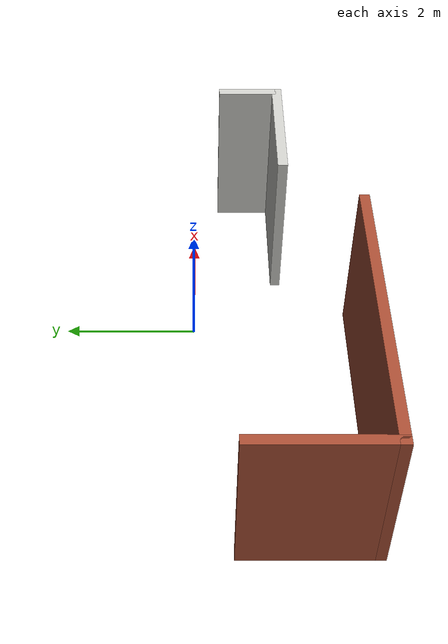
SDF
<?xml version='1.0'?>
<sdf version='1.7'>
  <model name='space'>
    <pose>-0.53 -1.2725 0 0 -0 0</pose>
    <link name='Wall_0'>
      <collision name='Wall_0_Collision'>
        <geometry>
          <box>
            <size>4.5 0.15 2.5</size>
          </box>
        </geometry>
        <pose>0 0 1.25 0 -0 0</pose>
      </collision>
      <visual name='Wall_0_Visual'>
        <pose>0 0 1.25 0 -0 0</pose>
        <geometry>
          <box>
            <size>4.5 0.15 2.5</size>
          </box>
        </geometry>
        <material>
          <script>
            <uri>file://media/materials/scripts/gazebo.material</uri>
            <name>Gazebo/Bricks</name>
          </script>
          <ambient>1 1 1 1</ambient>
        </material>
        <meta>
          <layer>0</layer>
        </meta>
      </visual>
      <pose>-1.345 -1.1975 0 0 -0 3.14159</pose>
    </link>
    <link name='Wall_1'>
      <collision name='Wall_1_Collision'>
        <geometry>
          <box>
            <size>2 0.15 2.5</size>
          </box>
        </geometry>
        <pose>0 0 1.25 0 -0 0</pose>
      </collision>
      <visual name='Wall_1_Visual'>
        <pose>0 0 1.25 0 -0 0</pose>
        <geometry>
          <box>
            <size>2 0.15 2.5</size>
          </box>
        </geometry>
        <material>
          <script>
            <uri>file://media/materials/scripts/gazebo.material</uri>
            <name>Gazebo/Bricks</name>
          </script>
          <ambient>1 1 1 1</ambient>
        </material>
        <meta>
          <layer>0</layer>
        </meta>
      </visual>
      <pose>-3.52 -0.2725 0 0 -0 1.5708</pose>
    </link>
    <link name='Wall_3'>
      <collision name='Wall_3_Collision'>
        <geometry>
          <box>
            <size>2 0.15 2.5</size>
          </box>
        </geometry>
        <pose>0 0 1.25 0 -0 0</pose>
      </collision>
      <visual name='Wall_3_Visual'>
        <pose>0 0 1.25 0 -0 0</pose>
        <geometry>
          <box>
            <size>2 0.15 2.5</size>
          </box>
        </geometry>
        <material>
          <script>
            <uri>file://media/materials/scripts/gazebo.material</uri>
            <name>Gazebo/CeilingTiled</name>
          </script>
          <ambient>1 1 1 1</ambient>
        </material>
        <meta>
          <layer>0</layer>
        </meta>
      </visual>
      <pose>2.595 -0.0575 0 0 -0 0</pose>
    </link>
    <link name='Wall_4'>
      <collision name='Wall_4_Collision'>
        <geometry>
          <box>
            <size>1 0.15 2.5</size>
          </box>
        </geometry>
        <pose>0 0 1.25 0 -0 0</pose>
      </collision>
      <visual name='Wall_4_Visual'>
        <pose>0 0 1.25 0 -0 0</pose>
        <geometry>
          <box>
            <size>1 0.15 2.5</size>
          </box>
        </geometry>
        <material>
          <script>
            <uri>file://media/materials/scripts/gazebo.material</uri>
            <name>Gazebo/CeilingTiled</name>
          </script>
          <ambient>1 1 1 1</ambient>
        </material>
        <meta>
          <layer>0</layer>
        </meta>
      </visual>
      <pose>3.52 0.3675 0 0 -0 1.5708</pose>
    </link>
    <static>1</static>
  </model>
</sdf>
